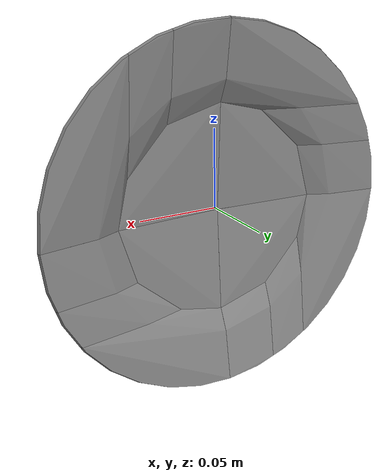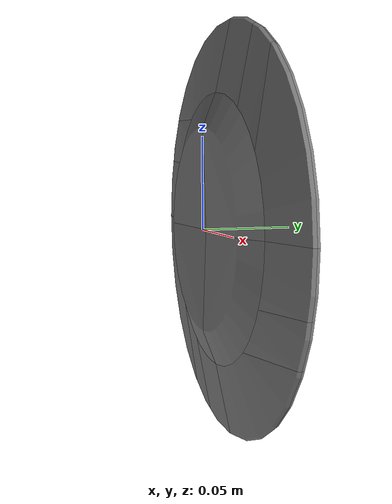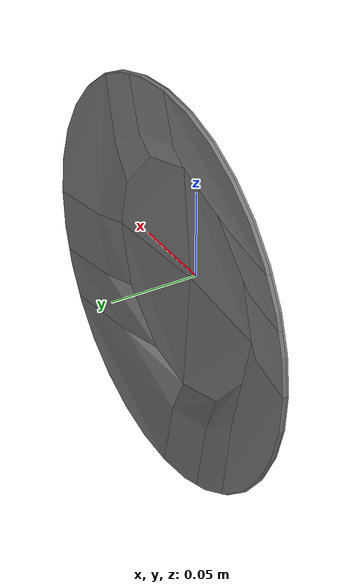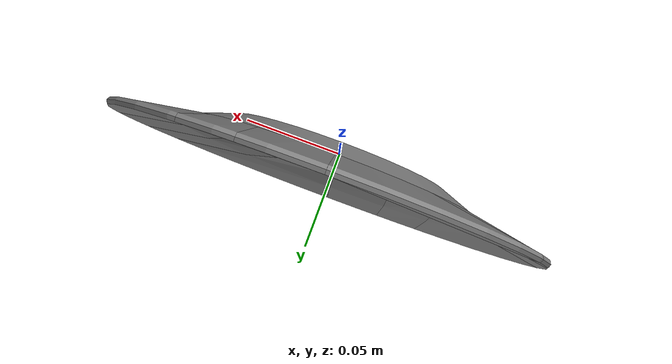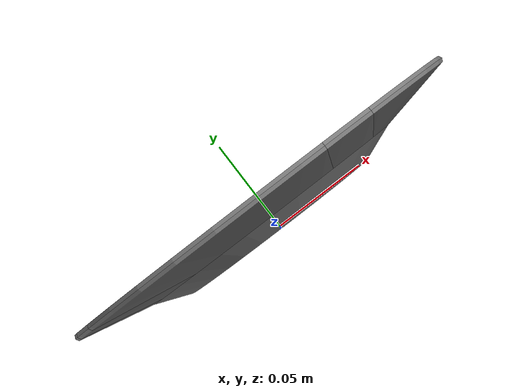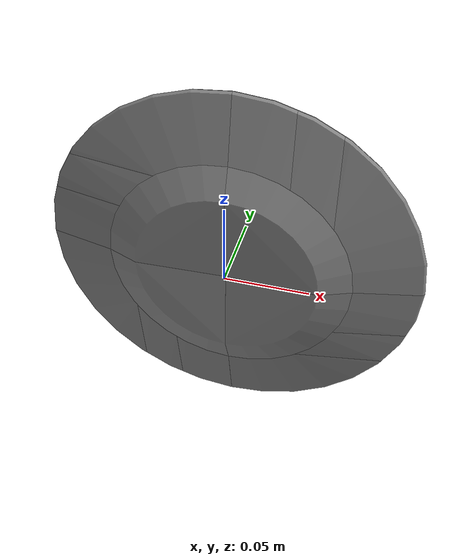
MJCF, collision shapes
<?xml version="1.0" encoding="utf-8"?>
<mujoco model="plate">
  <compiler angle="radian" meshdir="assets" texturedir="assets" autolimits="true"/>
  <asset>
    <material name="plate" specular="0.5" shininess="0.25"/>
    <mesh file="plate_01.obj"/>
    <mesh file="plate_01_collision_001.obj"/>
    <mesh file="plate_01_collision_002.obj"/>
    <mesh file="plate_01_collision_003.obj"/>
    <mesh file="plate_01_collision_004.obj"/>
    <mesh file="plate_01_collision_005.obj"/>
    <mesh file="plate_01_collision_006.obj"/>
    <mesh file="plate_01_collision_007.obj"/>
    <mesh file="plate_01_collision_008.obj"/>
    <mesh file="plate_01_collision_009.obj"/>
    <mesh file="plate_01_collision_010.obj"/>
    <mesh file="plate_01_collision_011.obj"/>
    <mesh file="plate_01_collision_012.obj"/>
    <mesh file="plate_01_collision_013.obj"/>
    <mesh file="plate_01_collision_014.obj"/>
    <mesh file="plate_01_collision_015.obj"/>
    <mesh file="plate_01_collision_016.obj"/>
  </asset>
  <default>
    <default class="plate">
      <default class="visual">
        <geom type="mesh" contype="0" conaffinity="0" group="2" material="plate"/>
      </default>
      <default class="collision">
        <geom type="mesh" group="3" density="2500" solimp="0.98 0.99 0.001" solref="0.004 1"/>
      </default>
      <geom pos="0.0 0 0" euler="0 1.57 0"/>
    </default>
  </default>
  <worldbody>
    <body name="plate" childclass="plate">
      <geom name="mesh" mesh="plate_01" class="visual"/>
      <geom name="collider_001" mesh="plate_01_collision_001" class="collision"/>
      <geom name="collider_002" mesh="plate_01_collision_002" class="collision"/>
      <geom name="collider_003" mesh="plate_01_collision_003" class="collision"/>
      <geom name="collider_004" mesh="plate_01_collision_004" class="collision"/>
      <geom name="collider_005" mesh="plate_01_collision_005" class="collision"/>
      <geom name="collider_006" mesh="plate_01_collision_006" class="collision"/>
      <geom name="collider_007" mesh="plate_01_collision_007" class="collision"/>
      <geom name="collider_008" mesh="plate_01_collision_008" class="collision"/>
      <geom name="collider_009" mesh="plate_01_collision_009" class="collision"/>
      <geom name="collider_010" mesh="plate_01_collision_010" class="collision"/>
      <geom name="collider_011" mesh="plate_01_collision_011" class="collision"/>
      <geom name="collider_012" mesh="plate_01_collision_012" class="collision"/>
      <geom name="collider_013" mesh="plate_01_collision_013" class="collision"/>
      <geom name="collider_014" mesh="plate_01_collision_014" class="collision"/>
      <geom name="collider_015" mesh="plate_01_collision_015" class="collision"/>
      <geom name="collider_016" mesh="plate_01_collision_016" class="collision"/>
    </body>
  </worldbody>
</mujoco>
